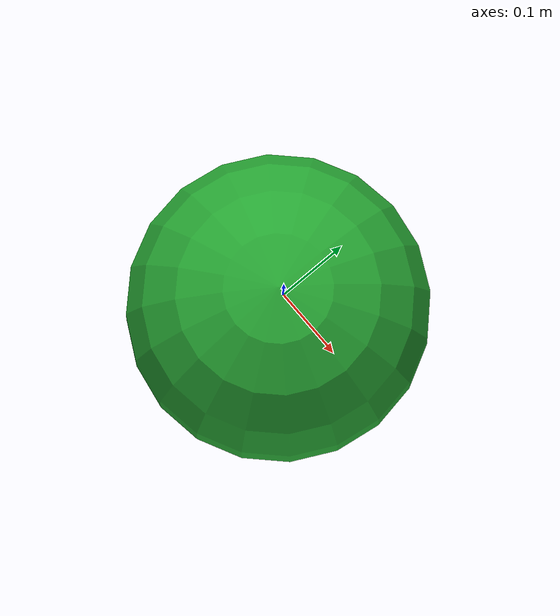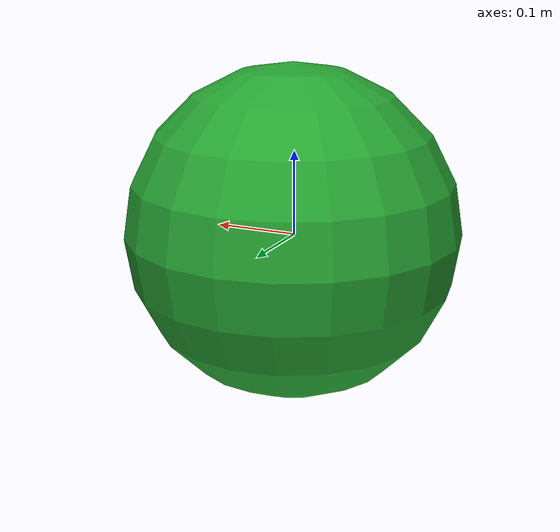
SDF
<?xml version='1.0'?>
<sdf version='1.7'>
  <model name='green_ball_1_0'>
    <link name='link_0'>
      <inertial>
        <mass>1</mass>
        <inertia>
          <ixx>0.1</ixx>
          <ixy>0</ixy>
          <ixz>0</ixz>
          <iyy>0.1</iyy>
          <iyz>0</iyz>
          <izz>0.1</izz>
        </inertia>
        <pose>0 0 0 0 -0 0</pose>
      </inertial>
      <pose>0.009137 -0.016542 0 0 -0 0</pose>
      <gravity>0</gravity>
      <self_collide>0</self_collide>
      <kinematic>0</kinematic>
      <enable_wind>0</enable_wind>
      <visual name='visual'>
        <pose>0 0 0 0 -0 0</pose>
        <geometry>
          <sphere>
            <radius>0.2</radius>
          </sphere>
        </geometry>
        <material>
          <lighting>1</lighting>
          <script>
            <uri>file://media/materials/scripts/gazebo.material</uri>
            <name>Gazebo/Green</name>
          </script>
          <shader type='pixel'>
            <normal_map>__default__</normal_map>
          </shader>
          <ambient>0 1 0 1</ambient>
          <diffuse>0 1 0 1</diffuse>
          <specular>0.1 0.1 0.1 1</specular>
          <emissive>0 0 0 1</emissive>
        </material>
        <transparency>0</transparency>
        <cast_shadows>1</cast_shadows>
      </visual>
    </link>
    <static>0</static>
    <allow_auto_disable>1</allow_auto_disable>
  </model>
</sdf>
